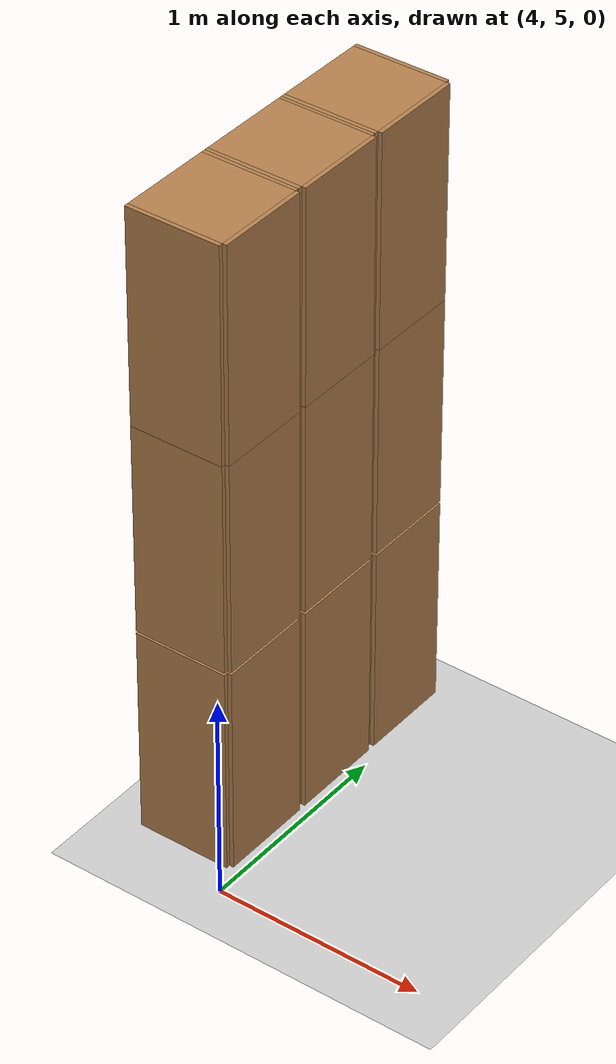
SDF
<sdf version="1.6">
 <world name="default">
  <model name="ground_plane">
   <static>1</static>
   <link name="link">
    <collision name="collision">
     <geometry><plane><normal>0 0 1</normal><size>100 100</size></plane></geometry>
     <surface>
      <contact><collide_bitmask>65535</collide_bitmask></contact>
      <friction><ode><mu>100</mu><mu2>50</mu2></ode></friction>
     </surface>
    </collision>
    <visual name="visual">
     <cast_shadows>0</cast_shadows>
     <geometry><plane><normal>0 0 1</normal><size>100 100</size></plane></geometry>
     <material>
      <script><uri>file://media/materials/scripts/gazebo.material</uri><name>Gazebo/Grey</name></script>
     </material>
    </visual>
   </link>
  </model>
  <model name="Locker18_clone_4_clone_0">
   <model name="Locker18">
    <model name="Locker3">
     <model name="cabinet">
      <static>1</static>
      <link name="cabinet_bottom_plate">
       <inertial>
        <pose>0 0 -1 0 -0 0</pose>
        <inertia><ixx>2.05</ixx><ixy>0</ixy><ixz>0</ixz><iyy>2.05</iyy><iyz>0</iyz><izz>2.05</izz></inertia>
        <mass>25</mass>
       </inertial>
       <collision name="cabinet_bottom_plate_geom">
        <pose>0 0 0.01 0 -0 0</pose>
        <geometry><box><size>0.45 0.45 0.02</size></box></geometry>
       </collision>
       <visual name="cabinet_bottom_plate_geom_visual">
        <pose>0 0 0.01 0 -0 0</pose>
        <geometry><box><size>0.45 0.45 0.02</size></box></geometry>
        <material>
         <script><uri>file://media/materials/scripts/gazebo.material</uri><name>Gazebo/Wood</name></script>
        </material>
       </visual>
       <collision name="cabinet_bottom_plate_geom_cabinet_back_plate">
        <pose>0.235 0 0.51 0 -0 0</pose>
        <geometry><box><size>0.02 0.45 1.02</size></box></geometry>
       </collision>
       <visual name="cabinet_bottom_plate_geom_cabinet_back_plate_visual">
        <pose>0.235 0 0.51 0 -0 0</pose>
        <geometry><box><size>0.02 0.45 1.02</size></box></geometry>
        <material>
         <script><uri>file://media/materials/scripts/gazebo.material</uri><name>Gazebo/Wood</name></script>
        </material>
       </visual>
       <collision name="cabinet_bottom_plate_geom_cabinet_left_plate">
        <pose>0 0.235 0.51 0 -0 0</pose>
        <geometry><box><size>0.45 0.02 1.02</size></box></geometry>
       </collision>
       <visual name="cabinet_bottom_plate_geom_cabinet_left_plate_visual">
        <pose>0 0.235 0.51 0 -0 0</pose>
        <geometry><box><size>0.45 0.02 1.02</size></box></geometry>
        <material>
         <script><uri>file://media/materials/scripts/gazebo.material</uri><name>Gazebo/Wood</name></script>
        </material>
       </visual>
       <collision name="cabinet_bottom_plate_geom_cabinet_middle_plate">
        <pose>0 0 0.51 0 -0 0</pose>
        <geometry><box><size>0.45 0.45 0.02</size></box></geometry>
       </collision>
       <visual name="cabinet_bottom_plate_geom_cabinet_middle_plate_visual">
        <pose>0 0 0.51 0 -0 0</pose>
        <geometry><box><size>0.45 0.45 0.02</size></box></geometry>
        <material>
         <script><uri>file://media/materials/scripts/gazebo.material</uri><name>Gazebo/Wood</name></script>
        </material>
       </visual>
       <collision name="cabinet_bottom_plate_geom_cabinet_right_plate">
        <pose>0 -0.235 0.51 0 -0 0</pose>
        <geometry><box><size>0.45 0.02 1.02</size></box></geometry>
       </collision>
       <visual name="cabinet_bottom_plate_geom_cabinet_right_plate_visual">
        <pose>0 -0.235 0.51 0 -0 0</pose>
        <geometry><box><size>0.45 0.02 1.02</size></box></geometry>
        <material>
         <script><uri>file://media/materials/scripts/gazebo.material</uri><name>Gazebo/Wood</name></script>
        </material>
       </visual>
       <collision name="cabinet_bottom_plate_geom_cabinet_top_plate">
        <pose>0 0 1.01 0 -0 0</pose>
        <geometry><box><size>0.45 0.45 0.02</size></box></geometry>
       </collision>
       <visual name="cabinet_bottom_plate_geom_cabinet_top_plate_visual">
        <pose>0 0 1.01 0 -0 0</pose>
        <geometry><box><size>0.45 0.45 0.02</size></box></geometry>
        <material>
         <script><uri>file://media/materials/scripts/gazebo.material</uri><name>Gazebo/Wood</name></script>
        </material>
       </visual>
      </link>
      <pose>-0.676968 1.45758 0 0 -0 0</pose>
     </model>
     <model name="cabinet_clone">
      <static>1</static>
      <link name="cabinet_bottom_plate">
       <inertial>
        <pose>0 0 -1 0 -0 0</pose>
        <inertia><ixx>2.05</ixx><ixy>0</ixy><ixz>0</ixz><iyy>2.05</iyy><iyz>0</iyz><izz>2.05</izz></inertia>
        <mass>25</mass>
       </inertial>
       <collision name="cabinet_bottom_plate_geom">
        <pose>0 0 0.01 0 -0 0</pose>
        <geometry><box><size>0.45 0.45 0.02</size></box></geometry>
       </collision>
       <visual name="cabinet_bottom_plate_geom_visual">
        <pose>0 0 0.01 0 -0 0</pose>
        <geometry><box><size>0.45 0.45 0.02</size></box></geometry>
        <material>
         <script><uri>file://media/materials/scripts/gazebo.material</uri><name>Gazebo/Wood</name></script>
        </material>
       </visual>
       <collision name="cabinet_bottom_plate_geom_cabinet_back_plate">
        <pose>0.235 0 0.51 0 -0 0</pose>
        <geometry><box><size>0.02 0.45 1.02</size></box></geometry>
       </collision>
       <visual name="cabinet_bottom_plate_geom_cabinet_back_plate_visual">
        <pose>0.235 0 0.51 0 -0 0</pose>
        <geometry><box><size>0.02 0.45 1.02</size></box></geometry>
        <material>
         <script><uri>file://media/materials/scripts/gazebo.material</uri><name>Gazebo/Wood</name></script>
        </material>
       </visual>
       <collision name="cabinet_bottom_plate_geom_cabinet_left_plate">
        <pose>0 0.235 0.51 0 -0 0</pose>
        <geometry><box><size>0.45 0.02 1.02</size></box></geometry>
       </collision>
       <visual name="cabinet_bottom_plate_geom_cabinet_left_plate_visual">
        <pose>0 0.235 0.51 0 -0 0</pose>
        <geometry><box><size>0.45 0.02 1.02</size></box></geometry>
        <material>
         <script><uri>file://media/materials/scripts/gazebo.material</uri><name>Gazebo/Wood</name></script>
        </material>
       </visual>
       <collision name="cabinet_bottom_plate_geom_cabinet_middle_plate">
        <pose>0 0 0.51 0 -0 0</pose>
        <geometry><box><size>0.45 0.45 0.02</size></box></geometry>
       </collision>
       <visual name="cabinet_bottom_plate_geom_cabinet_middle_plate_visual">
        <pose>0 0 0.51 0 -0 0</pose>
        <geometry><box><size>0.45 0.45 0.02</size></box></geometry>
        <material>
         <script><uri>file://media/materials/scripts/gazebo.material</uri><name>Gazebo/Wood</name></script>
        </material>
       </visual>
       <collision name="cabinet_bottom_plate_geom_cabinet_right_plate">
        <pose>0 -0.235 0.51 0 -0 0</pose>
        <geometry><box><size>0.45 0.02 1.02</size></box></geometry>
       </collision>
       <visual name="cabinet_bottom_plate_geom_cabinet_right_plate_visual">
        <pose>0 -0.235 0.51 0 -0 0</pose>
        <geometry><box><size>0.45 0.02 1.02</size></box></geometry>
        <material>
         <script><uri>file://media/materials/scripts/gazebo.material</uri><name>Gazebo/Wood</name></script>
        </material>
       </visual>
       <collision name="cabinet_bottom_plate_geom_cabinet_top_plate">
        <pose>0 0 1.01 0 -0 0</pose>
        <geometry><box><size>0.45 0.45 0.02</size></box></geometry>
       </collision>
       <visual name="cabinet_bottom_plate_geom_cabinet_top_plate_visual">
        <pose>0 0 1.01 0 -0 0</pose>
        <geometry><box><size>0.45 0.45 0.02</size></box></geometry>
        <material>
         <script><uri>file://media/materials/scripts/gazebo.material</uri><name>Gazebo/Wood</name></script>
        </material>
       </visual>
      </link>
      <pose>-0.676968 0.970971 0 0 -0 0</pose>
     </model>
     <model name="cabinet_clone_0">
      <static>1</static>
      <link name="cabinet_bottom_plate">
       <inertial>
        <pose>0 0 -1 0 -0 0</pose>
        <inertia><ixx>2.05</ixx><ixy>0</ixy><ixz>0</ixz><iyy>2.05</iyy><iyz>0</iyz><izz>2.05</izz></inertia>
        <mass>25</mass>
       </inertial>
       <collision name="cabinet_bottom_plate_geom">
        <pose>0 0 0.01 0 -0 0</pose>
        <geometry><box><size>0.45 0.45 0.02</size></box></geometry>
       </collision>
       <visual name="cabinet_bottom_plate_geom_visual">
        <pose>0 0 0.01 0 -0 0</pose>
        <geometry><box><size>0.45 0.45 0.02</size></box></geometry>
        <material>
         <script><uri>file://media/materials/scripts/gazebo.material</uri><name>Gazebo/Wood</name></script>
        </material>
       </visual>
       <collision name="cabinet_bottom_plate_geom_cabinet_back_plate">
        <pose>0.235 0 0.51 0 -0 0</pose>
        <geometry><box><size>0.02 0.45 1.02</size></box></geometry>
       </collision>
       <visual name="cabinet_bottom_plate_geom_cabinet_back_plate_visual">
        <pose>0.235 0 0.51 0 -0 0</pose>
        <geometry><box><size>0.02 0.45 1.02</size></box></geometry>
        <material>
         <script><uri>file://media/materials/scripts/gazebo.material</uri><name>Gazebo/Wood</name></script>
        </material>
       </visual>
       <collision name="cabinet_bottom_plate_geom_cabinet_left_plate">
        <pose>0 0.235 0.51 0 -0 0</pose>
        <geometry><box><size>0.45 0.02 1.02</size></box></geometry>
       </collision>
       <visual name="cabinet_bottom_plate_geom_cabinet_left_plate_visual">
        <pose>0 0.235 0.51 0 -0 0</pose>
        <geometry><box><size>0.45 0.02 1.02</size></box></geometry>
        <material>
         <script><uri>file://media/materials/scripts/gazebo.material</uri><name>Gazebo/Wood</name></script>
        </material>
       </visual>
       <collision name="cabinet_bottom_plate_geom_cabinet_middle_plate">
        <pose>0 0 0.51 0 -0 0</pose>
        <geometry><box><size>0.45 0.45 0.02</size></box></geometry>
       </collision>
       <visual name="cabinet_bottom_plate_geom_cabinet_middle_plate_visual">
        <pose>0 0 0.51 0 -0 0</pose>
        <geometry><box><size>0.45 0.45 0.02</size></box></geometry>
        <material>
         <script><uri>file://media/materials/scripts/gazebo.material</uri><name>Gazebo/Wood</name></script>
        </material>
       </visual>
       <collision name="cabinet_bottom_plate_geom_cabinet_right_plate">
        <pose>0 -0.235 0.51 0 -0 0</pose>
        <geometry><box><size>0.45 0.02 1.02</size></box></geometry>
       </collision>
       <visual name="cabinet_bottom_plate_geom_cabinet_right_plate_visual">
        <pose>0 -0.235 0.51 0 -0 0</pose>
        <geometry><box><size>0.45 0.02 1.02</size></box></geometry>
        <material>
         <script><uri>file://media/materials/scripts/gazebo.material</uri><name>Gazebo/Wood</name></script>
        </material>
       </visual>
       <collision name="cabinet_bottom_plate_geom_cabinet_top_plate">
        <pose>0 0 1.01 0 -0 0</pose>
        <geometry><box><size>0.45 0.45 0.02</size></box></geometry>
       </collision>
       <visual name="cabinet_bottom_plate_geom_cabinet_top_plate_visual">
        <pose>0 0 1.01 0 -0 0</pose>
        <geometry><box><size>0.45 0.45 0.02</size></box></geometry>
        <material>
         <script><uri>file://media/materials/scripts/gazebo.material</uri><name>Gazebo/Wood</name></script>
        </material>
       </visual>
      </link>
      <pose>-0.676968 0.48391 0 0 -0 0</pose>
     </model>
     <static>0</static>
     <pose>0 3e-06 -1.02763 0 -0 0</pose>
    </model>
    <model name="Locker3_clone">
     <model name="cabinet">
      <static>1</static>
      <link name="cabinet_bottom_plate">
       <inertial>
        <pose>0 0 -1 0 -0 0</pose>
        <inertia><ixx>2.05</ixx><ixy>0</ixy><ixz>0</ixz><iyy>2.05</iyy><iyz>0</iyz><izz>2.05</izz></inertia>
        <mass>25</mass>
       </inertial>
       <collision name="cabinet_bottom_plate_geom">
        <pose>0 0 0.01 0 -0 0</pose>
        <geometry><box><size>0.45 0.45 0.02</size></box></geometry>
       </collision>
       <visual name="cabinet_bottom_plate_geom_visual">
        <pose>0 0 0.01 0 -0 0</pose>
        <geometry><box><size>0.45 0.45 0.02</size></box></geometry>
        <material>
         <script><uri>file://media/materials/scripts/gazebo.material</uri><name>Gazebo/Wood</name></script>
        </material>
       </visual>
       <collision name="cabinet_bottom_plate_geom_cabinet_back_plate">
        <pose>0.235 0 0.51 0 -0 0</pose>
        <geometry><box><size>0.02 0.45 1.02</size></box></geometry>
       </collision>
       <visual name="cabinet_bottom_plate_geom_cabinet_back_plate_visual">
        <pose>0.235 0 0.51 0 -0 0</pose>
        <geometry><box><size>0.02 0.45 1.02</size></box></geometry>
        <material>
         <script><uri>file://media/materials/scripts/gazebo.material</uri><name>Gazebo/Wood</name></script>
        </material>
       </visual>
       <collision name="cabinet_bottom_plate_geom_cabinet_left_plate">
        <pose>0 0.235 0.51 0 -0 0</pose>
        <geometry><box><size>0.45 0.02 1.02</size></box></geometry>
       </collision>
       <visual name="cabinet_bottom_plate_geom_cabinet_left_plate_visual">
        <pose>0 0.235 0.51 0 -0 0</pose>
        <geometry><box><size>0.45 0.02 1.02</size></box></geometry>
        <material>
         <script><uri>file://media/materials/scripts/gazebo.material</uri><name>Gazebo/Wood</name></script>
        </material>
       </visual>
       <collision name="cabinet_bottom_plate_geom_cabinet_middle_plate">
        <pose>0 0 0.51 0 -0 0</pose>
        <geometry><box><size>0.45 0.45 0.02</size></box></geometry>
       </collision>
       <visual name="cabinet_bottom_plate_geom_cabinet_middle_plate_visual">
        <pose>0 0 0.51 0 -0 0</pose>
        <geometry><box><size>0.45 0.45 0.02</size></box></geometry>
        <material>
         <script><uri>file://media/materials/scripts/gazebo.material</uri><name>Gazebo/Wood</name></script>
        </material>
       </visual>
       <collision name="cabinet_bottom_plate_geom_cabinet_right_plate">
        <pose>0 -0.235 0.51 0 -0 0</pose>
        <geometry><box><size>0.45 0.02 1.02</size></box></geometry>
       </collision>
       <visual name="cabinet_bottom_plate_geom_cabinet_right_plate_visual">
        <pose>0 -0.235 0.51 0 -0 0</pose>
        <geometry><box><size>0.45 0.02 1.02</size></box></geometry>
        <material>
         <script><uri>file://media/materials/scripts/gazebo.material</uri><name>Gazebo/Wood</name></script>
        </material>
       </visual>
       <collision name="cabinet_bottom_plate_geom_cabinet_top_plate">
        <pose>0 0 1.01 0 -0 0</pose>
        <geometry><box><size>0.45 0.45 0.02</size></box></geometry>
       </collision>
       <visual name="cabinet_bottom_plate_geom_cabinet_top_plate_visual">
        <pose>0 0 1.01 0 -0 0</pose>
        <geometry><box><size>0.45 0.45 0.02</size></box></geometry>
        <material>
         <script><uri>file://media/materials/scripts/gazebo.material</uri><name>Gazebo/Wood</name></script>
        </material>
       </visual>
      </link>
      <pose>-0.676968 1.45758 0 0 -0 0</pose>
     </model>
     <model name="cabinet_clone">
      <static>1</static>
      <link name="cabinet_bottom_plate">
       <inertial>
        <pose>0 0 -1 0 -0 0</pose>
        <inertia><ixx>2.05</ixx><ixy>0</ixy><ixz>0</ixz><iyy>2.05</iyy><iyz>0</iyz><izz>2.05</izz></inertia>
        <mass>25</mass>
       </inertial>
       <collision name="cabinet_bottom_plate_geom">
        <pose>0 0 0.01 0 -0 0</pose>
        <geometry><box><size>0.45 0.45 0.02</size></box></geometry>
       </collision>
       <visual name="cabinet_bottom_plate_geom_visual">
        <pose>0 0 0.01 0 -0 0</pose>
        <geometry><box><size>0.45 0.45 0.02</size></box></geometry>
        <material>
         <script><uri>file://media/materials/scripts/gazebo.material</uri><name>Gazebo/Wood</name></script>
        </material>
       </visual>
       <collision name="cabinet_bottom_plate_geom_cabinet_back_plate">
        <pose>0.235 0 0.51 0 -0 0</pose>
        <geometry><box><size>0.02 0.45 1.02</size></box></geometry>
       </collision>
       <visual name="cabinet_bottom_plate_geom_cabinet_back_plate_visual">
        <pose>0.235 0 0.51 0 -0 0</pose>
        <geometry><box><size>0.02 0.45 1.02</size></box></geometry>
        <material>
         <script><uri>file://media/materials/scripts/gazebo.material</uri><name>Gazebo/Wood</name></script>
        </material>
       </visual>
       <collision name="cabinet_bottom_plate_geom_cabinet_left_plate">
        <pose>0 0.235 0.51 0 -0 0</pose>
        <geometry><box><size>0.45 0.02 1.02</size></box></geometry>
       </collision>
       <visual name="cabinet_bottom_plate_geom_cabinet_left_plate_visual">
        <pose>0 0.235 0.51 0 -0 0</pose>
        <geometry><box><size>0.45 0.02 1.02</size></box></geometry>
        <material>
         <script><uri>file://media/materials/scripts/gazebo.material</uri><name>Gazebo/Wood</name></script>
        </material>
       </visual>
       <collision name="cabinet_bottom_plate_geom_cabinet_middle_plate">
        <pose>0 0 0.51 0 -0 0</pose>
        <geometry><box><size>0.45 0.45 0.02</size></box></geometry>
       </collision>
       <visual name="cabinet_bottom_plate_geom_cabinet_middle_plate_visual">
        <pose>0 0 0.51 0 -0 0</pose>
        <geometry><box><size>0.45 0.45 0.02</size></box></geometry>
        <material>
         <script><uri>file://media/materials/scripts/gazebo.material</uri><name>Gazebo/Wood</name></script>
        </material>
       </visual>
       <collision name="cabinet_bottom_plate_geom_cabinet_right_plate">
        <pose>0 -0.235 0.51 0 -0 0</pose>
        <geometry><box><size>0.45 0.02 1.02</size></box></geometry>
       </collision>
       <visual name="cabinet_bottom_plate_geom_cabinet_right_plate_visual">
        <pose>0 -0.235 0.51 0 -0 0</pose>
        <geometry><box><size>0.45 0.02 1.02</size></box></geometry>
        <material>
         <script><uri>file://media/materials/scripts/gazebo.material</uri><name>Gazebo/Wood</name></script>
        </material>
       </visual>
       <collision name="cabinet_bottom_plate_geom_cabinet_top_plate">
        <pose>0 0 1.01 0 -0 0</pose>
        <geometry><box><size>0.45 0.45 0.02</size></box></geometry>
       </collision>
       <visual name="cabinet_bottom_plate_geom_cabinet_top_plate_visual">
        <pose>0 0 1.01 0 -0 0</pose>
        <geometry><box><size>0.45 0.45 0.02</size></box></geometry>
        <material>
         <script><uri>file://media/materials/scripts/gazebo.material</uri><name>Gazebo/Wood</name></script>
        </material>
       </visual>
      </link>
      <pose>-0.676968 0.970971 0 0 -0 0</pose>
     </model>
     <model name="cabinet_clone_0">
      <static>1</static>
      <link name="cabinet_bottom_plate">
       <inertial>
        <pose>0 0 -1 0 -0 0</pose>
        <inertia><ixx>2.05</ixx><ixy>0</ixy><ixz>0</ixz><iyy>2.05</iyy><iyz>0</iyz><izz>2.05</izz></inertia>
        <mass>25</mass>
       </inertial>
       <collision name="cabinet_bottom_plate_geom">
        <pose>0 0 0.01 0 -0 0</pose>
        <geometry><box><size>0.45 0.45 0.02</size></box></geometry>
       </collision>
       <visual name="cabinet_bottom_plate_geom_visual">
        <pose>0 0 0.01 0 -0 0</pose>
        <geometry><box><size>0.45 0.45 0.02</size></box></geometry>
        <material>
         <script><uri>file://media/materials/scripts/gazebo.material</uri><name>Gazebo/Wood</name></script>
        </material>
       </visual>
       <collision name="cabinet_bottom_plate_geom_cabinet_back_plate">
        <pose>0.235 0 0.51 0 -0 0</pose>
        <geometry><box><size>0.02 0.45 1.02</size></box></geometry>
       </collision>
       <visual name="cabinet_bottom_plate_geom_cabinet_back_plate_visual">
        <pose>0.235 0 0.51 0 -0 0</pose>
        <geometry><box><size>0.02 0.45 1.02</size></box></geometry>
        <material>
         <script><uri>file://media/materials/scripts/gazebo.material</uri><name>Gazebo/Wood</name></script>
        </material>
       </visual>
       <collision name="cabinet_bottom_plate_geom_cabinet_left_plate">
        <pose>0 0.235 0.51 0 -0 0</pose>
        <geometry><box><size>0.45 0.02 1.02</size></box></geometry>
       </collision>
       <visual name="cabinet_bottom_plate_geom_cabinet_left_plate_visual">
        <pose>0 0.235 0.51 0 -0 0</pose>
        <geometry><box><size>0.45 0.02 1.02</size></box></geometry>
        <material>
         <script><uri>file://media/materials/scripts/gazebo.material</uri><name>Gazebo/Wood</name></script>
        </material>
       </visual>
       <collision name="cabinet_bottom_plate_geom_cabinet_middle_plate">
        <pose>0 0 0.51 0 -0 0</pose>
        <geometry><box><size>0.45 0.45 0.02</size></box></geometry>
       </collision>
       <visual name="cabinet_bottom_plate_geom_cabinet_middle_plate_visual">
        <pose>0 0 0.51 0 -0 0</pose>
        <geometry><box><size>0.45 0.45 0.02</size></box></geometry>
        <material>
         <script><uri>file://media/materials/scripts/gazebo.material</uri><name>Gazebo/Wood</name></script>
        </material>
       </visual>
       <collision name="cabinet_bottom_plate_geom_cabinet_right_plate">
        <pose>0 -0.235 0.51 0 -0 0</pose>
        <geometry><box><size>0.45 0.02 1.02</size></box></geometry>
       </collision>
       <visual name="cabinet_bottom_plate_geom_cabinet_right_plate_visual">
        <pose>0 -0.235 0.51 0 -0 0</pose>
        <geometry><box><size>0.45 0.02 1.02</size></box></geometry>
        <material>
         <script><uri>file://media/materials/scripts/gazebo.material</uri><name>Gazebo/Wood</name></script>
        </material>
       </visual>
       <collision name="cabinet_bottom_plate_geom_cabinet_top_plate">
        <pose>0 0 1.01 0 -0 0</pose>
        <geometry><box><size>0.45 0.45 0.02</size></box></geometry>
       </collision>
       <visual name="cabinet_bottom_plate_geom_cabinet_top_plate_visual">
        <pose>0 0 1.01 0 -0 0</pose>
        <geometry><box><size>0.45 0.45 0.02</size></box></geometry>
        <material>
         <script><uri>file://media/materials/scripts/gazebo.material</uri><name>Gazebo/Wood</name></script>
        </material>
       </visual>
      </link>
      <pose>-0.676968 0.48391 0 0 -0 0</pose>
     </model>
     <static>0</static>
     <pose>0 3e-06 0.003717 0 -0 0</pose>
    </model>
    <model name="Locker3_clone_clone">
     <model name="cabinet">
      <static>1</static>
      <link name="cabinet_bottom_plate">
       <inertial>
        <pose>0 0 -1 0 -0 0</pose>
        <inertia><ixx>2.05</ixx><ixy>0</ixy><ixz>0</ixz><iyy>2.05</iyy><iyz>0</iyz><izz>2.05</izz></inertia>
        <mass>25</mass>
       </inertial>
       <collision name="cabinet_bottom_plate_geom">
        <pose>0 0 0.01 0 -0 0</pose>
        <geometry><box><size>0.45 0.45 0.02</size></box></geometry>
       </collision>
       <visual name="cabinet_bottom_plate_geom_visual">
        <pose>0 0 0.01 0 -0 0</pose>
        <geometry><box><size>0.45 0.45 0.02</size></box></geometry>
        <material>
         <script><uri>file://media/materials/scripts/gazebo.material</uri><name>Gazebo/Wood</name></script>
        </material>
       </visual>
       <collision name="cabinet_bottom_plate_geom_cabinet_back_plate">
        <pose>0.235 0 0.51 0 -0 0</pose>
        <geometry><box><size>0.02 0.45 1.02</size></box></geometry>
       </collision>
       <visual name="cabinet_bottom_plate_geom_cabinet_back_plate_visual">
        <pose>0.235 0 0.51 0 -0 0</pose>
        <geometry><box><size>0.02 0.45 1.02</size></box></geometry>
        <material>
         <script><uri>file://media/materials/scripts/gazebo.material</uri><name>Gazebo/Wood</name></script>
        </material>
       </visual>
       <collision name="cabinet_bottom_plate_geom_cabinet_left_plate">
        <pose>0 0.235 0.51 0 -0 0</pose>
        <geometry><box><size>0.45 0.02 1.02</size></box></geometry>
       </collision>
       <visual name="cabinet_bottom_plate_geom_cabinet_left_plate_visual">
        <pose>0 0.235 0.51 0 -0 0</pose>
        <geometry><box><size>0.45 0.02 1.02</size></box></geometry>
        <material>
         <script><uri>file://media/materials/scripts/gazebo.material</uri><name>Gazebo/Wood</name></script>
        </material>
       </visual>
       <collision name="cabinet_bottom_plate_geom_cabinet_middle_plate">
        <pose>0 0 0.51 0 -0 0</pose>
        <geometry><box><size>0.45 0.45 0.02</size></box></geometry>
       </collision>
       <visual name="cabinet_bottom_plate_geom_cabinet_middle_plate_visual">
        <pose>0 0 0.51 0 -0 0</pose>
        <geometry><box><size>0.45 0.45 0.02</size></box></geometry>
        <material>
         <script><uri>file://media/materials/scripts/gazebo.material</uri><name>Gazebo/Wood</name></script>
        </material>
       </visual>
       <collision name="cabinet_bottom_plate_geom_cabinet_right_plate">
        <pose>0 -0.235 0.51 0 -0 0</pose>
        <geometry><box><size>0.45 0.02 1.02</size></box></geometry>
       </collision>
       <visual name="cabinet_bottom_plate_geom_cabinet_right_plate_visual">
        <pose>0 -0.235 0.51 0 -0 0</pose>
        <geometry><box><size>0.45 0.02 1.02</size></box></geometry>
        <material>
         <script><uri>file://media/materials/scripts/gazebo.material</uri><name>Gazebo/Wood</name></script>
        </material>
       </visual>
       <collision name="cabinet_bottom_plate_geom_cabinet_top_plate">
        <pose>0 0 1.01 0 -0 0</pose>
        <geometry><box><size>0.45 0.45 0.02</size></box></geometry>
       </collision>
       <visual name="cabinet_bottom_plate_geom_cabinet_top_plate_visual">
        <pose>0 0 1.01 0 -0 0</pose>
        <geometry><box><size>0.45 0.45 0.02</size></box></geometry>
        <material>
         <script><uri>file://media/materials/scripts/gazebo.material</uri><name>Gazebo/Wood</name></script>
        </material>
       </visual>
      </link>
      <pose>-0.676968 1.45758 0 0 -0 0</pose>
     </model>
     <model name="cabinet_clone">
      <static>1</static>
      <link name="cabinet_bottom_plate">
       <inertial>
        <pose>0 0 -1 0 -0 0</pose>
        <inertia><ixx>2.05</ixx><ixy>0</ixy><ixz>0</ixz><iyy>2.05</iyy><iyz>0</iyz><izz>2.05</izz></inertia>
        <mass>25</mass>
       </inertial>
       <collision name="cabinet_bottom_plate_geom">
        <pose>0 0 0.01 0 -0 0</pose>
        <geometry><box><size>0.45 0.45 0.02</size></box></geometry>
       </collision>
       <visual name="cabinet_bottom_plate_geom_visual">
        <pose>0 0 0.01 0 -0 0</pose>
        <geometry><box><size>0.45 0.45 0.02</size></box></geometry>
        <material>
         <script><uri>file://media/materials/scripts/gazebo.material</uri><name>Gazebo/Wood</name></script>
        </material>
       </visual>
       <collision name="cabinet_bottom_plate_geom_cabinet_back_plate">
        <pose>0.235 0 0.51 0 -0 0</pose>
        <geometry><box><size>0.02 0.45 1.02</size></box></geometry>
       </collision>
       <visual name="cabinet_bottom_plate_geom_cabinet_back_plate_visual">
        <pose>0.235 0 0.51 0 -0 0</pose>
        <geometry><box><size>0.02 0.45 1.02</size></box></geometry>
        <material>
         <script><uri>file://media/materials/scripts/gazebo.material</uri><name>Gazebo/Wood</name></script>
        </material>
       </visual>
       <collision name="cabinet_bottom_plate_geom_cabinet_left_plate">
        <pose>0 0.235 0.51 0 -0 0</pose>
        <geometry><box><size>0.45 0.02 1.02</size></box></geometry>
       </collision>
       <visual name="cabinet_bottom_plate_geom_cabinet_left_plate_visual">
        <pose>0 0.235 0.51 0 -0 0</pose>
        <geometry><box><size>0.45 0.02 1.02</size></box></geometry>
        <material>
         <script><uri>file://media/materials/scripts/gazebo.material</uri><name>Gazebo/Wood</name></script>
        </material>
       </visual>
       <collision name="cabinet_bottom_plate_geom_cabinet_middle_plate">
        <pose>0 0 0.51 0 -0 0</pose>
        <geometry><box><size>0.45 0.45 0.02</size></box></geometry>
       </collision>
       <visual name="cabinet_bottom_plate_geom_cabinet_middle_plate_visual">
        <pose>0 0 0.51 0 -0 0</pose>
        <geometry><box><size>0.45 0.45 0.02</size></box></geometry>
        <material>
         <script><uri>file://media/materials/scripts/gazebo.material</uri><name>Gazebo/Wood</name></script>
        </material>
       </visual>
       <collision name="cabinet_bottom_plate_geom_cabinet_right_plate">
        <pose>0 -0.235 0.51 0 -0 0</pose>
        <geometry><box><size>0.45 0.02 1.02</size></box></geometry>
       </collision>
       <visual name="cabinet_bottom_plate_geom_cabinet_right_plate_visual">
        <pose>0 -0.235 0.51 0 -0 0</pose>
        <geometry><box><size>0.45 0.02 1.02</size></box></geometry>
        <material>
         <script><uri>file://media/materials/scripts/gazebo.material</uri><name>Gazebo/Wood</name></script>
        </material>
       </visual>
       <collision name="cabinet_bottom_plate_geom_cabinet_top_plate">
        <pose>0 0 1.01 0 -0 0</pose>
        <geometry><box><size>0.45 0.45 0.02</size></box></geometry>
       </collision>
       <visual name="cabinet_bottom_plate_geom_cabinet_top_plate_visual">
        <pose>0 0 1.01 0 -0 0</pose>
        <geometry><box><size>0.45 0.45 0.02</size></box></geometry>
        <material>
         <script><uri>file://media/materials/scripts/gazebo.material</uri><name>Gazebo/Wood</name></script>
        </material>
       </visual>
      </link>
      <pose>-0.676968 0.970971 0 0 -0 0</pose>
     </model>
     <model name="cabinet_clone_0">
      <static>1</static>
      <link name="cabinet_bottom_plate">
       <inertial>
        <pose>0 0 -1 0 -0 0</pose>
        <inertia><ixx>2.05</ixx><ixy>0</ixy><ixz>0</ixz><iyy>2.05</iyy><iyz>0</iyz><izz>2.05</izz></inertia>
        <mass>25</mass>
       </inertial>
       <collision name="cabinet_bottom_plate_geom">
        <pose>0 0 0.01 0 -0 0</pose>
        <geometry><box><size>0.45 0.45 0.02</size></box></geometry>
       </collision>
       <visual name="cabinet_bottom_plate_geom_visual">
        <pose>0 0 0.01 0 -0 0</pose>
        <geometry><box><size>0.45 0.45 0.02</size></box></geometry>
        <material>
         <script><uri>file://media/materials/scripts/gazebo.material</uri><name>Gazebo/Wood</name></script>
        </material>
       </visual>
       <collision name="cabinet_bottom_plate_geom_cabinet_back_plate">
        <pose>0.235 0 0.51 0 -0 0</pose>
        <geometry><box><size>0.02 0.45 1.02</size></box></geometry>
       </collision>
       <visual name="cabinet_bottom_plate_geom_cabinet_back_plate_visual">
        <pose>0.235 0 0.51 0 -0 0</pose>
        <geometry><box><size>0.02 0.45 1.02</size></box></geometry>
        <material>
         <script><uri>file://media/materials/scripts/gazebo.material</uri><name>Gazebo/Wood</name></script>
        </material>
       </visual>
       <collision name="cabinet_bottom_plate_geom_cabinet_left_plate">
        <pose>0 0.235 0.51 0 -0 0</pose>
        <geometry><box><size>0.45 0.02 1.02</size></box></geometry>
       </collision>
       <visual name="cabinet_bottom_plate_geom_cabinet_left_plate_visual">
        <pose>0 0.235 0.51 0 -0 0</pose>
        <geometry><box><size>0.45 0.02 1.02</size></box></geometry>
        <material>
         <script><uri>file://media/materials/scripts/gazebo.material</uri><name>Gazebo/Wood</name></script>
        </material>
       </visual>
       <collision name="cabinet_bottom_plate_geom_cabinet_middle_plate">
        <pose>0 0 0.51 0 -0 0</pose>
        <geometry><box><size>0.45 0.45 0.02</size></box></geometry>
       </collision>
       <visual name="cabinet_bottom_plate_geom_cabinet_middle_plate_visual">
        <pose>0 0 0.51 0 -0 0</pose>
        <geometry><box><size>0.45 0.45 0.02</size></box></geometry>
        <material>
         <script><uri>file://media/materials/scripts/gazebo.material</uri><name>Gazebo/Wood</name></script>
        </material>
       </visual>
       <collision name="cabinet_bottom_plate_geom_cabinet_right_plate">
        <pose>0 -0.235 0.51 0 -0 0</pose>
        <geometry><box><size>0.45 0.02 1.02</size></box></geometry>
       </collision>
       <visual name="cabinet_bottom_plate_geom_cabinet_right_plate_visual">
        <pose>0 -0.235 0.51 0 -0 0</pose>
        <geometry><box><size>0.45 0.02 1.02</size></box></geometry>
        <material>
         <script><uri>file://media/materials/scripts/gazebo.material</uri><name>Gazebo/Wood</name></script>
        </material>
       </visual>
       <collision name="cabinet_bottom_plate_geom_cabinet_top_plate">
        <pose>0 0 1.01 0 -0 0</pose>
        <geometry><box><size>0.45 0.45 0.02</size></box></geometry>
       </collision>
       <visual name="cabinet_bottom_plate_geom_cabinet_top_plate_visual">
        <pose>0 0 1.01 0 -0 0</pose>
        <geometry><box><size>0.45 0.45 0.02</size></box></geometry>
        <material>
         <script><uri>file://media/materials/scripts/gazebo.material</uri><name>Gazebo/Wood</name></script>
        </material>
       </visual>
      </link>
      <pose>-0.676968 0.48391 0 0 -0 0</pose>
     </model>
     <static>0</static>
     <pose>0 3e-06 1.02391 0 -0 0</pose>
    </model>
    <static>0</static>
    <pose>-0 4e-06 4e-06 0 -0 0</pose>
   </model>
   <static>0</static>
   <pose>4.42561 4.83834 1.08672 0 -0 0</pose>
  </model>
 </world>
</sdf>
